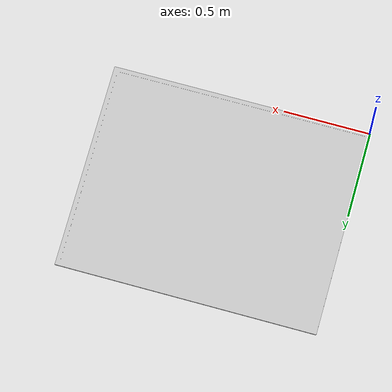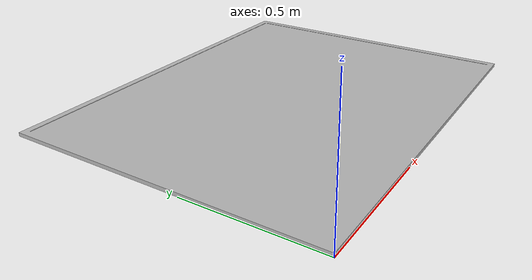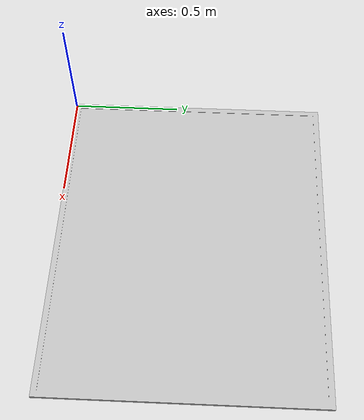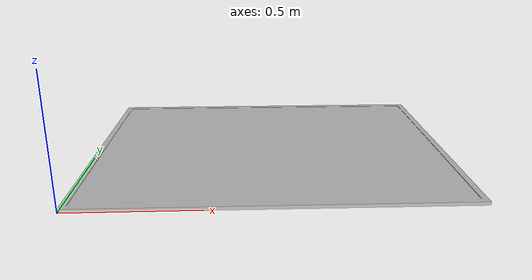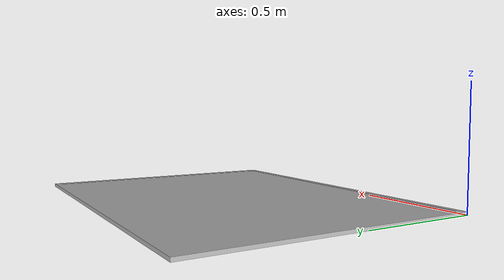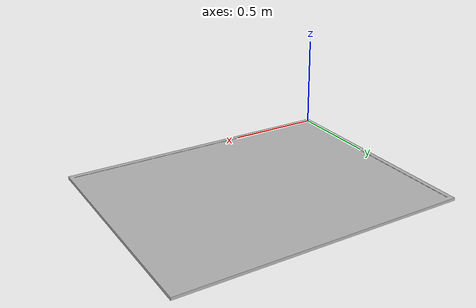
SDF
<?xml version="1.0"?>
<sdf version="1.9">
  <model name="WhiteBoard">
    <static>true</static>
    <link name="link">
      <collision name="collision">
        <geometry>
          <mesh>
            <uri>model://WhiteBoard/meshes/Whiteboard.dae</uri>
            <scale>0.001 0.001 0.001</scale>
          </mesh>
        </geometry>
      </collision>
      <visual name="visual">
        <geometry>
          <mesh>
            <uri>model://WhiteBoard/meshes/Whiteboard.dae</uri>
            <scale>0.001 0.001 0.001</scale>
          </mesh>
        </geometry>
      </visual>
    </link>
  </model>
</sdf>
